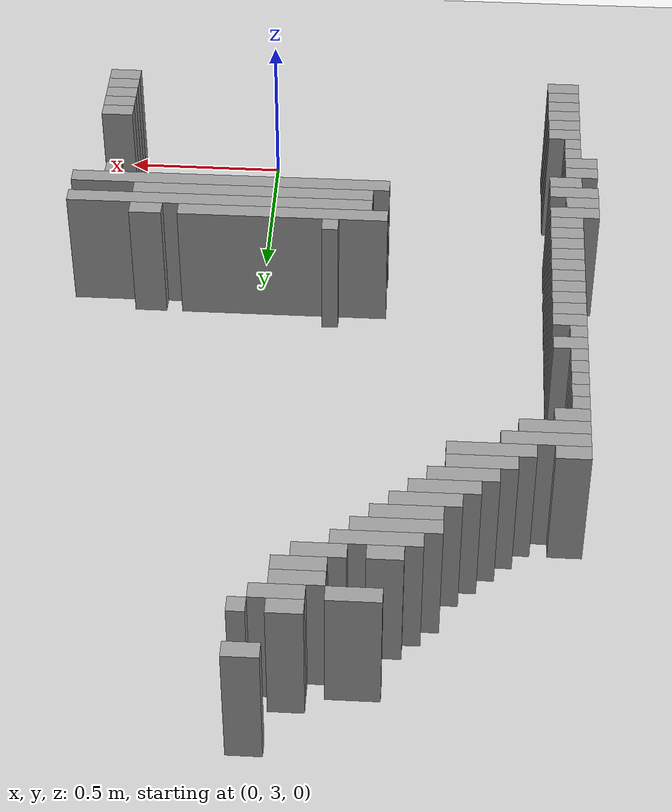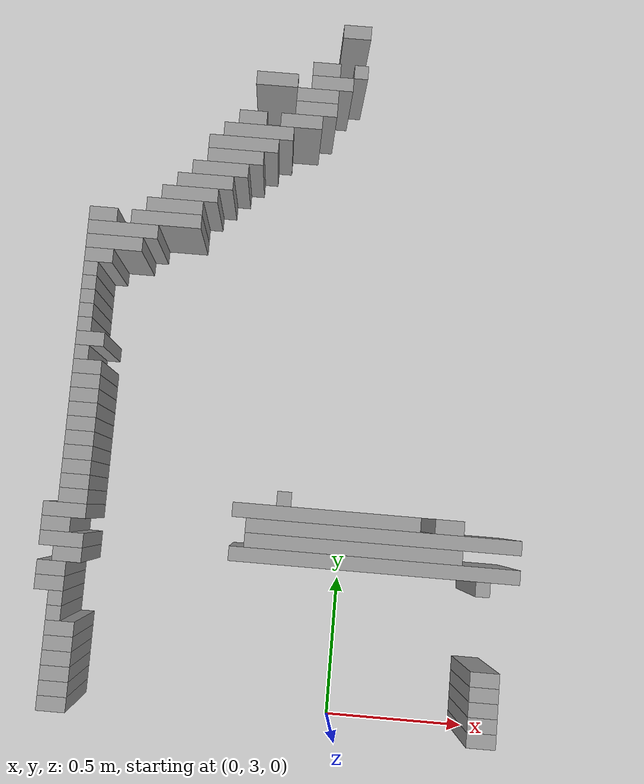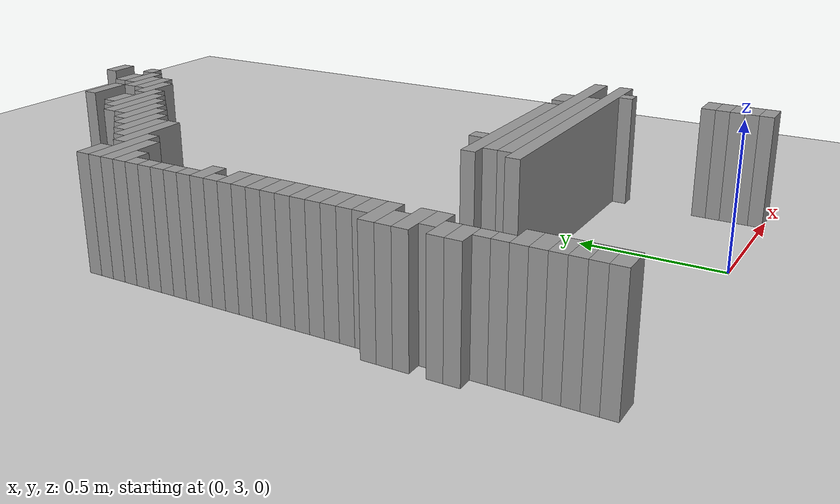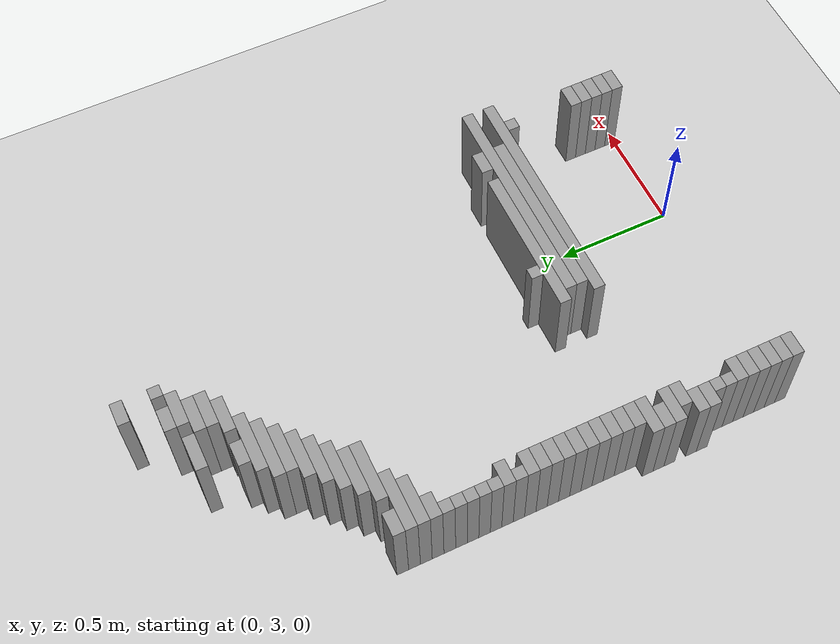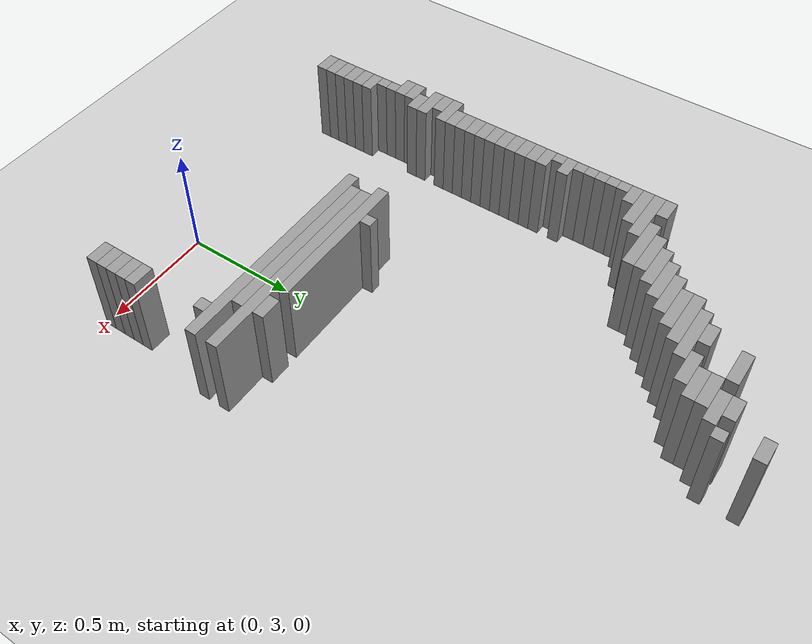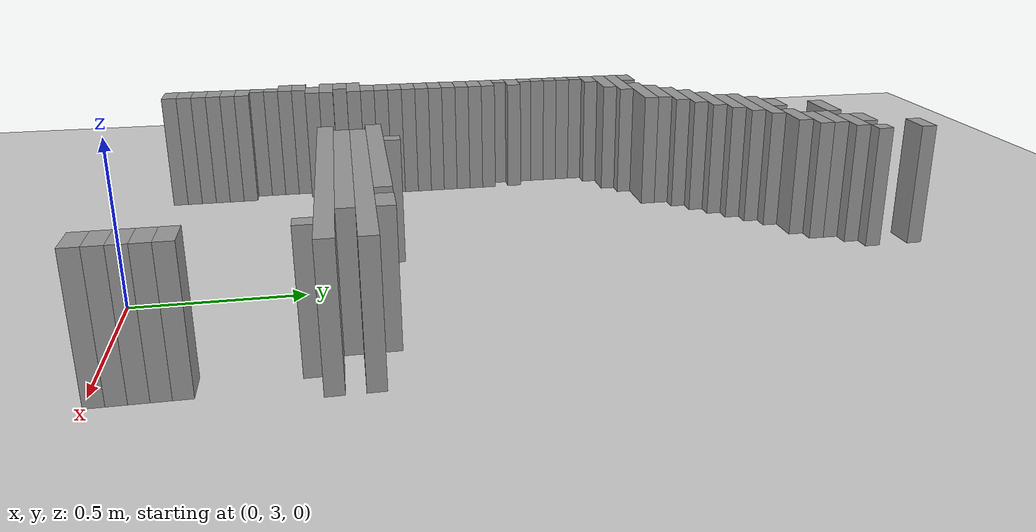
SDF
<sdf version="1.6">
 <world name="parking_mission">
  <include><uri>model://sun</uri></include>
  <include><uri>model://ground_plane</uri></include>
  <model name="wall_1">
   <static>true</static>
   <pose>-0.1000 5.4750 0.2000 0 0 0</pose>
   <link name="link">
    <collision name="collision">
     <geometry><box><size>0.1000 0.0500 0.4000</size></box></geometry>
     <surface>
      <contact><ode><kp>20000.0</kp><kd>10.0</kd><max_vel>0.5</max_vel><min_depth>0.001</min_depth></ode></contact>
      <friction><ode><mu>1.0</mu><mu2>1.0</mu2></ode></friction>
     </surface>
    </collision>
    <visual name="visual">
     <geometry><box><size>0.1000 0.0500 0.4000</size></box></geometry>
     <material>
      <script><name>Gazebo/Grey</name><uri>file://media/materials/scripts/gazebo.material</uri></script>
     </material>
    </visual>
   </link>
  </model>
  <model name="wall_14">
   <static>true</static>
   <pose>-0.2000 5.3250 0.2000 0 0 0</pose>
   <link name="link">
    <collision name="collision">
     <geometry><box><size>0.1000 0.0500 0.4000</size></box></geometry>
     <surface>
      <contact><ode><kp>20000.0</kp><kd>10.0</kd><max_vel>0.5</max_vel><min_depth>0.001</min_depth></ode></contact>
      <friction><ode><mu>1.0</mu><mu2>1.0</mu2></ode></friction>
     </surface>
    </collision>
    <visual name="visual">
     <geometry><box><size>0.1000 0.0500 0.4000</size></box></geometry>
     <material>
      <script><name>Gazebo/Grey</name><uri>file://media/materials/scripts/gazebo.material</uri></script>
     </material>
    </visual>
   </link>
  </model>
  <model name="wall_15">
   <static>true</static>
   <pose>-0.0750 5.3250 0.2000 0 0 0</pose>
   <link name="link">
    <collision name="collision">
     <geometry><box><size>0.0500 0.0500 0.4000</size></box></geometry>
     <surface>
      <contact><ode><kp>20000.0</kp><kd>10.0</kd><max_vel>0.5</max_vel><min_depth>0.001</min_depth></ode></contact>
      <friction><ode><mu>1.0</mu><mu2>1.0</mu2></ode></friction>
     </surface>
    </collision>
    <visual name="visual">
     <geometry><box><size>0.0500 0.0500 0.4000</size></box></geometry>
     <material>
      <script><name>Gazebo/Grey</name><uri>file://media/materials/scripts/gazebo.material</uri></script>
     </material>
    </visual>
   </link>
  </model>
  <model name="wall_17">
   <static>true</static>
   <pose>-0.3750 5.2750 0.2000 0 0 0</pose>
   <link name="link">
    <collision name="collision">
     <geometry><box><size>0.1500 0.0500 0.4000</size></box></geometry>
     <surface>
      <contact><ode><kp>20000.0</kp><kd>10.0</kd><max_vel>0.5</max_vel><min_depth>0.001</min_depth></ode></contact>
      <friction><ode><mu>1.0</mu><mu2>1.0</mu2></ode></friction>
     </surface>
    </collision>
    <visual name="visual">
     <geometry><box><size>0.1500 0.0500 0.4000</size></box></geometry>
     <material>
      <script><name>Gazebo/Grey</name><uri>file://media/materials/scripts/gazebo.material</uri></script>
     </material>
    </visual>
   </link>
  </model>
  <model name="wall_18">
   <static>true</static>
   <pose>-0.1750 5.2750 0.2000 0 0 0</pose>
   <link name="link">
    <collision name="collision">
     <geometry><box><size>0.1500 0.0500 0.4000</size></box></geometry>
     <surface>
      <contact><ode><kp>20000.0</kp><kd>10.0</kd><max_vel>0.5</max_vel><min_depth>0.001</min_depth></ode></contact>
      <friction><ode><mu>1.0</mu><mu2>1.0</mu2></ode></friction>
     </surface>
    </collision>
    <visual name="visual">
     <geometry><box><size>0.1500 0.0500 0.4000</size></box></geometry>
     <material>
      <script><name>Gazebo/Grey</name><uri>file://media/materials/scripts/gazebo.material</uri></script>
     </material>
    </visual>
   </link>
  </model>
  <model name="wall_21">
   <static>true</static>
   <pose>-0.2250 5.2250 0.2000 0 0 0</pose>
   <link name="link">
    <collision name="collision">
     <geometry><box><size>0.1500 0.0500 0.4000</size></box></geometry>
     <surface>
      <contact><ode><kp>20000.0</kp><kd>10.0</kd><max_vel>0.5</max_vel><min_depth>0.001</min_depth></ode></contact>
      <friction><ode><mu>1.0</mu><mu2>1.0</mu2></ode></friction>
     </surface>
    </collision>
    <visual name="visual">
     <geometry><box><size>0.1500 0.0500 0.4000</size></box></geometry>
     <material>
      <script><name>Gazebo/Grey</name><uri>file://media/materials/scripts/gazebo.material</uri></script>
     </material>
    </visual>
   </link>
  </model>
  <model name="wall_23">
   <static>true</static>
   <pose>-0.2250 5.1750 0.2000 0 0 0</pose>
   <link name="link">
    <collision name="collision">
     <geometry><box><size>0.1500 0.0500 0.4000</size></box></geometry>
     <surface>
      <contact><ode><kp>20000.0</kp><kd>10.0</kd><max_vel>0.5</max_vel><min_depth>0.001</min_depth></ode></contact>
      <friction><ode><mu>1.0</mu><mu2>1.0</mu2></ode></friction>
     </surface>
    </collision>
    <visual name="visual">
     <geometry><box><size>0.1500 0.0500 0.4000</size></box></geometry>
     <material>
      <script><name>Gazebo/Grey</name><uri>file://media/materials/scripts/gazebo.material</uri></script>
     </material>
    </visual>
   </link>
  </model>
  <model name="wall_27">
   <static>true</static>
   <pose>-0.4500 5.1250 0.2000 0 0 0</pose>
   <link name="link">
    <collision name="collision">
     <geometry><box><size>0.1000 0.0500 0.4000</size></box></geometry>
     <surface>
      <contact><ode><kp>20000.0</kp><kd>10.0</kd><max_vel>0.5</max_vel><min_depth>0.001</min_depth></ode></contact>
      <friction><ode><mu>1.0</mu><mu2>1.0</mu2></ode></friction>
     </surface>
    </collision>
    <visual name="visual">
     <geometry><box><size>0.1000 0.0500 0.4000</size></box></geometry>
     <material>
      <script><name>Gazebo/Grey</name><uri>file://media/materials/scripts/gazebo.material</uri></script>
     </material>
    </visual>
   </link>
  </model>
  <model name="wall_28">
   <static>true</static>
   <pose>-0.2750 5.1250 0.2000 0 0 0</pose>
   <link name="link">
    <collision name="collision">
     <geometry><box><size>0.1500 0.0500 0.4000</size></box></geometry>
     <surface>
      <contact><ode><kp>20000.0</kp><kd>10.0</kd><max_vel>0.5</max_vel><min_depth>0.001</min_depth></ode></contact>
      <friction><ode><mu>1.0</mu><mu2>1.0</mu2></ode></friction>
     </surface>
    </collision>
    <visual name="visual">
     <geometry><box><size>0.1500 0.0500 0.4000</size></box></geometry>
     <material>
      <script><name>Gazebo/Grey</name><uri>file://media/materials/scripts/gazebo.material</uri></script>
     </material>
    </visual>
   </link>
  </model>
  <model name="wall_32">
   <static>true</static>
   <pose>-0.4250 5.0750 0.2000 0 0 0</pose>
   <link name="link">
    <collision name="collision">
     <geometry><box><size>0.2500 0.0500 0.4000</size></box></geometry>
     <surface>
      <contact><ode><kp>20000.0</kp><kd>10.0</kd><max_vel>0.5</max_vel><min_depth>0.001</min_depth></ode></contact>
      <friction><ode><mu>1.0</mu><mu2>1.0</mu2></ode></friction>
     </surface>
    </collision>
    <visual name="visual">
     <geometry><box><size>0.2500 0.0500 0.4000</size></box></geometry>
     <material>
      <script><name>Gazebo/Grey</name><uri>file://media/materials/scripts/gazebo.material</uri></script>
     </material>
    </visual>
   </link>
  </model>
  <model name="wall_36">
   <static>true</static>
   <pose>-0.4750 5.0250 0.2000 0 0 0</pose>
   <link name="link">
    <collision name="collision">
     <geometry><box><size>0.2500 0.0500 0.4000</size></box></geometry>
     <surface>
      <contact><ode><kp>20000.0</kp><kd>10.0</kd><max_vel>0.5</max_vel><min_depth>0.001</min_depth></ode></contact>
      <friction><ode><mu>1.0</mu><mu2>1.0</mu2></ode></friction>
     </surface>
    </collision>
    <visual name="visual">
     <geometry><box><size>0.2500 0.0500 0.4000</size></box></geometry>
     <material>
      <script><name>Gazebo/Grey</name><uri>file://media/materials/scripts/gazebo.material</uri></script>
     </material>
    </visual>
   </link>
  </model>
  <model name="wall_39">
   <static>true</static>
   <pose>-0.5000 4.9750 0.2000 0 0 0</pose>
   <link name="link">
    <collision name="collision">
     <geometry><box><size>0.2000 0.0500 0.4000</size></box></geometry>
     <surface>
      <contact><ode><kp>20000.0</kp><kd>10.0</kd><max_vel>0.5</max_vel><min_depth>0.001</min_depth></ode></contact>
      <friction><ode><mu>1.0</mu><mu2>1.0</mu2></ode></friction>
     </surface>
    </collision>
    <visual name="visual">
     <geometry><box><size>0.2000 0.0500 0.4000</size></box></geometry>
     <material>
      <script><name>Gazebo/Grey</name><uri>file://media/materials/scripts/gazebo.material</uri></script>
     </material>
    </visual>
   </link>
  </model>
  <model name="wall_41">
   <static>true</static>
   <pose>-0.5500 4.9250 0.2000 0 0 0</pose>
   <link name="link">
    <collision name="collision">
     <geometry><box><size>0.2000 0.0500 0.4000</size></box></geometry>
     <surface>
      <contact><ode><kp>20000.0</kp><kd>10.0</kd><max_vel>0.5</max_vel><min_depth>0.001</min_depth></ode></contact>
      <friction><ode><mu>1.0</mu><mu2>1.0</mu2></ode></friction>
     </surface>
    </collision>
    <visual name="visual">
     <geometry><box><size>0.2000 0.0500 0.4000</size></box></geometry>
     <material>
      <script><name>Gazebo/Grey</name><uri>file://media/materials/scripts/gazebo.material</uri></script>
     </material>
    </visual>
   </link>
  </model>
  <model name="wall_43">
   <static>true</static>
   <pose>-0.6000 4.8750 0.2000 0 0 0</pose>
   <link name="link">
    <collision name="collision">
     <geometry><box><size>0.2000 0.0500 0.4000</size></box></geometry>
     <surface>
      <contact><ode><kp>20000.0</kp><kd>10.0</kd><max_vel>0.5</max_vel><min_depth>0.001</min_depth></ode></contact>
      <friction><ode><mu>1.0</mu><mu2>1.0</mu2></ode></friction>
     </surface>
    </collision>
    <visual name="visual">
     <geometry><box><size>0.2000 0.0500 0.4000</size></box></geometry>
     <material>
      <script><name>Gazebo/Grey</name><uri>file://media/materials/scripts/gazebo.material</uri></script>
     </material>
    </visual>
   </link>
  </model>
  <model name="wall_45">
   <static>true</static>
   <pose>-0.6500 4.8250 0.2000 0 0 0</pose>
   <link name="link">
    <collision name="collision">
     <geometry><box><size>0.2000 0.0500 0.4000</size></box></geometry>
     <surface>
      <contact><ode><kp>20000.0</kp><kd>10.0</kd><max_vel>0.5</max_vel><min_depth>0.001</min_depth></ode></contact>
      <friction><ode><mu>1.0</mu><mu2>1.0</mu2></ode></friction>
     </surface>
    </collision>
    <visual name="visual">
     <geometry><box><size>0.2000 0.0500 0.4000</size></box></geometry>
     <material>
      <script><name>Gazebo/Grey</name><uri>file://media/materials/scripts/gazebo.material</uri></script>
     </material>
    </visual>
   </link>
  </model>
  <model name="wall_47">
   <static>true</static>
   <pose>-0.7000 4.7750 0.2000 0 0 0</pose>
   <link name="link">
    <collision name="collision">
     <geometry><box><size>0.2000 0.0500 0.4000</size></box></geometry>
     <surface>
      <contact><ode><kp>20000.0</kp><kd>10.0</kd><max_vel>0.5</max_vel><min_depth>0.001</min_depth></ode></contact>
      <friction><ode><mu>1.0</mu><mu2>1.0</mu2></ode></friction>
     </surface>
    </collision>
    <visual name="visual">
     <geometry><box><size>0.2000 0.0500 0.4000</size></box></geometry>
     <material>
      <script><name>Gazebo/Grey</name><uri>file://media/materials/scripts/gazebo.material</uri></script>
     </material>
    </visual>
   </link>
  </model>
  <model name="wall_49">
   <static>true</static>
   <pose>-0.9500 4.7250 0.2000 0 0 0</pose>
   <link name="link">
    <collision name="collision">
     <geometry><box><size>0.1000 0.0500 0.4000</size></box></geometry>
     <surface>
      <contact><ode><kp>20000.0</kp><kd>10.0</kd><max_vel>0.5</max_vel><min_depth>0.001</min_depth></ode></contact>
      <friction><ode><mu>1.0</mu><mu2>1.0</mu2></ode></friction>
     </surface>
    </collision>
    <visual name="visual">
     <geometry><box><size>0.1000 0.0500 0.4000</size></box></geometry>
     <material>
      <script><name>Gazebo/Grey</name><uri>file://media/materials/scripts/gazebo.material</uri></script>
     </material>
    </visual>
   </link>
  </model>
  <model name="wall_50">
   <static>true</static>
   <pose>-0.7250 4.7250 0.2000 0 0 0</pose>
   <link name="link">
    <collision name="collision">
     <geometry><box><size>0.2500 0.0500 0.4000</size></box></geometry>
     <surface>
      <contact><ode><kp>20000.0</kp><kd>10.0</kd><max_vel>0.5</max_vel><min_depth>0.001</min_depth></ode></contact>
      <friction><ode><mu>1.0</mu><mu2>1.0</mu2></ode></friction>
     </surface>
    </collision>
    <visual name="visual">
     <geometry><box><size>0.2500 0.0500 0.4000</size></box></geometry>
     <material>
      <script><name>Gazebo/Grey</name><uri>file://media/materials/scripts/gazebo.material</uri></script>
     </material>
    </visual>
   </link>
  </model>
  <model name="wall_52">
   <static>true</static>
   <pose>-0.8750 4.6750 0.2000 0 0 0</pose>
   <link name="link">
    <collision name="collision">
     <geometry><box><size>0.2500 0.0500 0.4000</size></box></geometry>
     <surface>
      <contact><ode><kp>20000.0</kp><kd>10.0</kd><max_vel>0.5</max_vel><min_depth>0.001</min_depth></ode></contact>
      <friction><ode><mu>1.0</mu><mu2>1.0</mu2></ode></friction>
     </surface>
    </collision>
    <visual name="visual">
     <geometry><box><size>0.2500 0.0500 0.4000</size></box></geometry>
     <material>
      <script><name>Gazebo/Grey</name><uri>file://media/materials/scripts/gazebo.material</uri></script>
     </material>
    </visual>
   </link>
  </model>
  <model name="wall_54">
   <static>true</static>
   <pose>-0.9000 4.6250 0.2000 0 0 0</pose>
   <link name="link">
    <collision name="collision">
     <geometry><box><size>0.2000 0.0500 0.4000</size></box></geometry>
     <surface>
      <contact><ode><kp>20000.0</kp><kd>10.0</kd><max_vel>0.5</max_vel><min_depth>0.001</min_depth></ode></contact>
      <friction><ode><mu>1.0</mu><mu2>1.0</mu2></ode></friction>
     </surface>
    </collision>
    <visual name="visual">
     <geometry><box><size>0.2000 0.0500 0.4000</size></box></geometry>
     <material>
      <script><name>Gazebo/Grey</name><uri>file://media/materials/scripts/gazebo.material</uri></script>
     </material>
    </visual>
   </link>
  </model>
  <model name="wall_56">
   <static>true</static>
   <pose>-0.9500 4.5750 0.2000 0 0 0</pose>
   <link name="link">
    <collision name="collision">
     <geometry><box><size>0.1000 0.0500 0.4000</size></box></geometry>
     <surface>
      <contact><ode><kp>20000.0</kp><kd>10.0</kd><max_vel>0.5</max_vel><min_depth>0.001</min_depth></ode></contact>
      <friction><ode><mu>1.0</mu><mu2>1.0</mu2></ode></friction>
     </surface>
    </collision>
    <visual name="visual">
     <geometry><box><size>0.1000 0.0500 0.4000</size></box></geometry>
     <material>
      <script><name>Gazebo/Grey</name><uri>file://media/materials/scripts/gazebo.material</uri></script>
     </material>
    </visual>
   </link>
  </model>
  <model name="wall_58">
   <static>true</static>
   <pose>-0.9750 4.5250 0.2000 0 0 0</pose>
   <link name="link">
    <collision name="collision">
     <geometry><box><size>0.0500 0.0500 0.4000</size></box></geometry>
     <surface>
      <contact><ode><kp>20000.0</kp><kd>10.0</kd><max_vel>0.5</max_vel><min_depth>0.001</min_depth></ode></contact>
      <friction><ode><mu>1.0</mu><mu2>1.0</mu2></ode></friction>
     </surface>
    </collision>
    <visual name="visual">
     <geometry><box><size>0.0500 0.0500 0.4000</size></box></geometry>
     <material>
      <script><name>Gazebo/Grey</name><uri>file://media/materials/scripts/gazebo.material</uri></script>
     </material>
    </visual>
   </link>
  </model>
  <model name="wall_60">
   <static>true</static>
   <pose>-0.9750 4.4750 0.2000 0 0 0</pose>
   <link name="link">
    <collision name="collision">
     <geometry><box><size>0.0500 0.0500 0.4000</size></box></geometry>
     <surface>
      <contact><ode><kp>20000.0</kp><kd>10.0</kd><max_vel>0.5</max_vel><min_depth>0.001</min_depth></ode></contact>
      <friction><ode><mu>1.0</mu><mu2>1.0</mu2></ode></friction>
     </surface>
    </collision>
    <visual name="visual">
     <geometry><box><size>0.0500 0.0500 0.4000</size></box></geometry>
     <material>
      <script><name>Gazebo/Grey</name><uri>file://media/materials/scripts/gazebo.material</uri></script>
     </material>
    </visual>
   </link>
  </model>
  <model name="wall_62">
   <static>true</static>
   <pose>-0.9750 4.4250 0.2000 0 0 0</pose>
   <link name="link">
    <collision name="collision">
     <geometry><box><size>0.0500 0.0500 0.4000</size></box></geometry>
     <surface>
      <contact><ode><kp>20000.0</kp><kd>10.0</kd><max_vel>0.5</max_vel><min_depth>0.001</min_depth></ode></contact>
      <friction><ode><mu>1.0</mu><mu2>1.0</mu2></ode></friction>
     </surface>
    </collision>
    <visual name="visual">
     <geometry><box><size>0.0500 0.0500 0.4000</size></box></geometry>
     <material>
      <script><name>Gazebo/Grey</name><uri>file://media/materials/scripts/gazebo.material</uri></script>
     </material>
    </visual>
   </link>
  </model>
  <model name="wall_64">
   <static>true</static>
   <pose>-0.9750 4.3750 0.2000 0 0 0</pose>
   <link name="link">
    <collision name="collision">
     <geometry><box><size>0.0500 0.0500 0.4000</size></box></geometry>
     <surface>
      <contact><ode><kp>20000.0</kp><kd>10.0</kd><max_vel>0.5</max_vel><min_depth>0.001</min_depth></ode></contact>
      <friction><ode><mu>1.0</mu><mu2>1.0</mu2></ode></friction>
     </surface>
    </collision>
    <visual name="visual">
     <geometry><box><size>0.0500 0.0500 0.4000</size></box></geometry>
     <material>
      <script><name>Gazebo/Grey</name><uri>file://media/materials/scripts/gazebo.material</uri></script>
     </material>
    </visual>
   </link>
  </model>
  <model name="wall_66">
   <static>true</static>
   <pose>-0.9750 4.3250 0.2000 0 0 0</pose>
   <link name="link">
    <collision name="collision">
     <geometry><box><size>0.0500 0.0500 0.4000</size></box></geometry>
     <surface>
      <contact><ode><kp>20000.0</kp><kd>10.0</kd><max_vel>0.5</max_vel><min_depth>0.001</min_depth></ode></contact>
      <friction><ode><mu>1.0</mu><mu2>1.0</mu2></ode></friction>
     </surface>
    </collision>
    <visual name="visual">
     <geometry><box><size>0.0500 0.0500 0.4000</size></box></geometry>
     <material>
      <script><name>Gazebo/Grey</name><uri>file://media/materials/scripts/gazebo.material</uri></script>
     </material>
    </visual>
   </link>
  </model>
  <model name="wall_69">
   <static>true</static>
   <pose>-0.9500 4.2750 0.2000 0 0 0</pose>
   <link name="link">
    <collision name="collision">
     <geometry><box><size>0.1000 0.0500 0.4000</size></box></geometry>
     <surface>
      <contact><ode><kp>20000.0</kp><kd>10.0</kd><max_vel>0.5</max_vel><min_depth>0.001</min_depth></ode></contact>
      <friction><ode><mu>1.0</mu><mu2>1.0</mu2></ode></friction>
     </surface>
    </collision>
    <visual name="visual">
     <geometry><box><size>0.1000 0.0500 0.4000</size></box></geometry>
     <material>
      <script><name>Gazebo/Grey</name><uri>file://media/materials/scripts/gazebo.material</uri></script>
     </material>
    </visual>
   </link>
  </model>
  <model name="wall_74">
   <static>true</static>
   <pose>-0.9750 4.2250 0.2000 0 0 0</pose>
   <link name="link">
    <collision name="collision">
     <geometry><box><size>0.0500 0.0500 0.4000</size></box></geometry>
     <surface>
      <contact><ode><kp>20000.0</kp><kd>10.0</kd><max_vel>0.5</max_vel><min_depth>0.001</min_depth></ode></contact>
      <friction><ode><mu>1.0</mu><mu2>1.0</mu2></ode></friction>
     </surface>
    </collision>
    <visual name="visual">
     <geometry><box><size>0.0500 0.0500 0.4000</size></box></geometry>
     <material>
      <script><name>Gazebo/Grey</name><uri>file://media/materials/scripts/gazebo.material</uri></script>
     </material>
    </visual>
   </link>
  </model>
  <model name="wall_80">
   <static>true</static>
   <pose>-0.9500 4.1750 0.2000 0 0 0</pose>
   <link name="link">
    <collision name="collision">
     <geometry><box><size>0.1000 0.0500 0.4000</size></box></geometry>
     <surface>
      <contact><ode><kp>20000.0</kp><kd>10.0</kd><max_vel>0.5</max_vel><min_depth>0.001</min_depth></ode></contact>
      <friction><ode><mu>1.0</mu><mu2>1.0</mu2></ode></friction>
     </surface>
    </collision>
    <visual name="visual">
     <geometry><box><size>0.1000 0.0500 0.4000</size></box></geometry>
     <material>
      <script><name>Gazebo/Grey</name><uri>file://media/materials/scripts/gazebo.material</uri></script>
     </material>
    </visual>
   </link>
  </model>
  <model name="wall_85">
   <static>true</static>
   <pose>-0.9500 4.1250 0.2000 0 0 0</pose>
   <link name="link">
    <collision name="collision">
     <geometry><box><size>0.1000 0.0500 0.4000</size></box></geometry>
     <surface>
      <contact><ode><kp>20000.0</kp><kd>10.0</kd><max_vel>0.5</max_vel><min_depth>0.001</min_depth></ode></contact>
      <friction><ode><mu>1.0</mu><mu2>1.0</mu2></ode></friction>
     </surface>
    </collision>
    <visual name="visual">
     <geometry><box><size>0.1000 0.0500 0.4000</size></box></geometry>
     <material>
      <script><name>Gazebo/Grey</name><uri>file://media/materials/scripts/gazebo.material</uri></script>
     </material>
    </visual>
   </link>
  </model>
  <model name="wall_90">
   <static>true</static>
   <pose>-0.9500 4.0750 0.2000 0 0 0</pose>
   <link name="link">
    <collision name="collision">
     <geometry><box><size>0.1000 0.0500 0.4000</size></box></geometry>
     <surface>
      <contact><ode><kp>20000.0</kp><kd>10.0</kd><max_vel>0.5</max_vel><min_depth>0.001</min_depth></ode></contact>
      <friction><ode><mu>1.0</mu><mu2>1.0</mu2></ode></friction>
     </surface>
    </collision>
    <visual name="visual">
     <geometry><box><size>0.1000 0.0500 0.4000</size></box></geometry>
     <material>
      <script><name>Gazebo/Grey</name><uri>file://media/materials/scripts/gazebo.material</uri></script>
     </material>
    </visual>
   </link>
  </model>
  <model name="wall_93">
   <static>true</static>
   <pose>-0.9500 4.0250 0.2000 0 0 0</pose>
   <link name="link">
    <collision name="collision">
     <geometry><box><size>0.1000 0.0500 0.4000</size></box></geometry>
     <surface>
      <contact><ode><kp>20000.0</kp><kd>10.0</kd><max_vel>0.5</max_vel><min_depth>0.001</min_depth></ode></contact>
      <friction><ode><mu>1.0</mu><mu2>1.0</mu2></ode></friction>
     </surface>
    </collision>
    <visual name="visual">
     <geometry><box><size>0.1000 0.0500 0.4000</size></box></geometry>
     <material>
      <script><name>Gazebo/Grey</name><uri>file://media/materials/scripts/gazebo.material</uri></script>
     </material>
    </visual>
   </link>
  </model>
  <model name="wall_97">
   <static>true</static>
   <pose>-0.9500 3.9750 0.2000 0 0 0</pose>
   <link name="link">
    <collision name="collision">
     <geometry><box><size>0.1000 0.0500 0.4000</size></box></geometry>
     <surface>
      <contact><ode><kp>20000.0</kp><kd>10.0</kd><max_vel>0.5</max_vel><min_depth>0.001</min_depth></ode></contact>
      <friction><ode><mu>1.0</mu><mu2>1.0</mu2></ode></friction>
     </surface>
    </collision>
    <visual name="visual">
     <geometry><box><size>0.1000 0.0500 0.4000</size></box></geometry>
     <material>
      <script><name>Gazebo/Grey</name><uri>file://media/materials/scripts/gazebo.material</uri></script>
     </material>
    </visual>
   </link>
  </model>
  <model name="wall_100">
   <static>true</static>
   <pose>-0.9500 3.9250 0.2000 0 0 0</pose>
   <link name="link">
    <collision name="collision">
     <geometry><box><size>0.1000 0.0500 0.4000</size></box></geometry>
     <surface>
      <contact><ode><kp>20000.0</kp><kd>10.0</kd><max_vel>0.5</max_vel><min_depth>0.001</min_depth></ode></contact>
      <friction><ode><mu>1.0</mu><mu2>1.0</mu2></ode></friction>
     </surface>
    </collision>
    <visual name="visual">
     <geometry><box><size>0.1000 0.0500 0.4000</size></box></geometry>
     <material>
      <script><name>Gazebo/Grey</name><uri>file://media/materials/scripts/gazebo.material</uri></script>
     </material>
    </visual>
   </link>
  </model>
  <model name="wall_103">
   <static>true</static>
   <pose>-0.9500 3.8750 0.2000 0 0 0</pose>
   <link name="link">
    <collision name="collision">
     <geometry><box><size>0.1000 0.0500 0.4000</size></box></geometry>
     <surface>
      <contact><ode><kp>20000.0</kp><kd>10.0</kd><max_vel>0.5</max_vel><min_depth>0.001</min_depth></ode></contact>
      <friction><ode><mu>1.0</mu><mu2>1.0</mu2></ode></friction>
     </surface>
    </collision>
    <visual name="visual">
     <geometry><box><size>0.1000 0.0500 0.4000</size></box></geometry>
     <material>
      <script><name>Gazebo/Grey</name><uri>file://media/materials/scripts/gazebo.material</uri></script>
     </material>
    </visual>
   </link>
  </model>
  <model name="wall_106">
   <static>true</static>
   <pose>-0.9500 3.8250 0.2000 0 0 0</pose>
   <link name="link">
    <collision name="collision">
     <geometry><box><size>0.1000 0.0500 0.4000</size></box></geometry>
     <surface>
      <contact><ode><kp>20000.0</kp><kd>10.0</kd><max_vel>0.5</max_vel><min_depth>0.001</min_depth></ode></contact>
      <friction><ode><mu>1.0</mu><mu2>1.0</mu2></ode></friction>
     </surface>
    </collision>
    <visual name="visual">
     <geometry><box><size>0.1000 0.0500 0.4000</size></box></geometry>
     <material>
      <script><name>Gazebo/Grey</name><uri>file://media/materials/scripts/gazebo.material</uri></script>
     </material>
    </visual>
   </link>
  </model>
  <model name="wall_109">
   <static>true</static>
   <pose>-0.9500 3.7750 0.2000 0 0 0</pose>
   <link name="link">
    <collision name="collision">
     <geometry><box><size>0.1000 0.0500 0.4000</size></box></geometry>
     <surface>
      <contact><ode><kp>20000.0</kp><kd>10.0</kd><max_vel>0.5</max_vel><min_depth>0.001</min_depth></ode></contact>
      <friction><ode><mu>1.0</mu><mu2>1.0</mu2></ode></friction>
     </surface>
    </collision>
    <visual name="visual">
     <geometry><box><size>0.1000 0.0500 0.4000</size></box></geometry>
     <material>
      <script><name>Gazebo/Grey</name><uri>file://media/materials/scripts/gazebo.material</uri></script>
     </material>
    </visual>
   </link>
  </model>
  <model name="wall_110">
   <static>true</static>
   <pose>-0.2250 3.7750 0.2000 0 0 0</pose>
   <link name="link">
    <collision name="collision">
     <geometry><box><size>0.0500 0.0500 0.4000</size></box></geometry>
     <surface>
      <contact><ode><kp>20000.0</kp><kd>10.0</kd><max_vel>0.5</max_vel><min_depth>0.001</min_depth></ode></contact>
      <friction><ode><mu>1.0</mu><mu2>1.0</mu2></ode></friction>
     </surface>
    </collision>
    <visual name="visual">
     <geometry><box><size>0.0500 0.0500 0.4000</size></box></geometry>
     <material>
      <script><name>Gazebo/Grey</name><uri>file://media/materials/scripts/gazebo.material</uri></script>
     </material>
    </visual>
   </link>
  </model>
  <model name="wall_113">
   <static>true</static>
   <pose>-0.9500 3.7250 0.2000 0 0 0</pose>
   <link name="link">
    <collision name="collision">
     <geometry><box><size>0.1000 0.0500 0.4000</size></box></geometry>
     <surface>
      <contact><ode><kp>20000.0</kp><kd>10.0</kd><max_vel>0.5</max_vel><min_depth>0.001</min_depth></ode></contact>
      <friction><ode><mu>1.0</mu><mu2>1.0</mu2></ode></friction>
     </surface>
    </collision>
    <visual name="visual">
     <geometry><box><size>0.1000 0.0500 0.4000</size></box></geometry>
     <material>
      <script><name>Gazebo/Grey</name><uri>file://media/materials/scripts/gazebo.material</uri></script>
     </material>
    </visual>
   </link>
  </model>
  <model name="wall_114">
   <static>true</static>
   <pose>-0.0750 3.7250 0.2000 0 0 0</pose>
   <link name="link">
    <collision name="collision">
     <geometry><box><size>0.6500 0.0500 0.4000</size></box></geometry>
     <surface>
      <contact><ode><kp>20000.0</kp><kd>10.0</kd><max_vel>0.5</max_vel><min_depth>0.001</min_depth></ode></contact>
      <friction><ode><mu>1.0</mu><mu2>1.0</mu2></ode></friction>
     </surface>
    </collision>
    <visual name="visual">
     <geometry><box><size>0.6500 0.0500 0.4000</size></box></geometry>
     <material>
      <script><name>Gazebo/Grey</name><uri>file://media/materials/scripts/gazebo.material</uri></script>
     </material>
    </visual>
   </link>
  </model>
  <model name="wall_115">
   <static>true</static>
   <pose>0.3500 3.7250 0.2000 0 0 0</pose>
   <link name="link">
    <collision name="collision">
     <geometry><box><size>0.1000 0.0500 0.4000</size></box></geometry>
     <surface>
      <contact><ode><kp>20000.0</kp><kd>10.0</kd><max_vel>0.5</max_vel><min_depth>0.001</min_depth></ode></contact>
      <friction><ode><mu>1.0</mu><mu2>1.0</mu2></ode></friction>
     </surface>
    </collision>
    <visual name="visual">
     <geometry><box><size>0.1000 0.0500 0.4000</size></box></geometry>
     <material>
      <script><name>Gazebo/Grey</name><uri>file://media/materials/scripts/gazebo.material</uri></script>
     </material>
    </visual>
   </link>
  </model>
  <model name="wall_119">
   <static>true</static>
   <pose>-0.9750 3.6750 0.2000 0 0 0</pose>
   <link name="link">
    <collision name="collision">
     <geometry><box><size>0.1500 0.0500 0.4000</size></box></geometry>
     <surface>
      <contact><ode><kp>20000.0</kp><kd>10.0</kd><max_vel>0.5</max_vel><min_depth>0.001</min_depth></ode></contact>
      <friction><ode><mu>1.0</mu><mu2>1.0</mu2></ode></friction>
     </surface>
    </collision>
    <visual name="visual">
     <geometry><box><size>0.1500 0.0500 0.4000</size></box></geometry>
     <material>
      <script><name>Gazebo/Grey</name><uri>file://media/materials/scripts/gazebo.material</uri></script>
     </material>
    </visual>
   </link>
  </model>
  <model name="wall_120">
   <static>true</static>
   <pose>0.1250 3.6750 0.2000 0 0 0</pose>
   <link name="link">
    <collision name="collision">
     <geometry><box><size>0.9500 0.0500 0.4000</size></box></geometry>
     <surface>
      <contact><ode><kp>20000.0</kp><kd>10.0</kd><max_vel>0.5</max_vel><min_depth>0.001</min_depth></ode></contact>
      <friction><ode><mu>1.0</mu><mu2>1.0</mu2></ode></friction>
     </surface>
    </collision>
    <visual name="visual">
     <geometry><box><size>0.9500 0.0500 0.4000</size></box></geometry>
     <material>
      <script><name>Gazebo/Grey</name><uri>file://media/materials/scripts/gazebo.material</uri></script>
     </material>
    </visual>
   </link>
  </model>
  <model name="wall_125">
   <static>true</static>
   <pose>-1.0000 3.6250 0.2000 0 0 0</pose>
   <link name="link">
    <collision name="collision">
     <geometry><box><size>0.1000 0.0500 0.4000</size></box></geometry>
     <surface>
      <contact><ode><kp>20000.0</kp><kd>10.0</kd><max_vel>0.5</max_vel><min_depth>0.001</min_depth></ode></contact>
      <friction><ode><mu>1.0</mu><mu2>1.0</mu2></ode></friction>
     </surface>
    </collision>
    <visual name="visual">
     <geometry><box><size>0.1000 0.0500 0.4000</size></box></geometry>
     <material>
      <script><name>Gazebo/Grey</name><uri>file://media/materials/scripts/gazebo.material</uri></script>
     </material>
    </visual>
   </link>
  </model>
  <model name="wall_126">
   <static>true</static>
   <pose>0.0250 3.6250 0.2000 0 0 0</pose>
   <link name="link">
    <collision name="collision">
     <geometry><box><size>0.7500 0.0500 0.4000</size></box></geometry>
     <surface>
      <contact><ode><kp>20000.0</kp><kd>10.0</kd><max_vel>0.5</max_vel><min_depth>0.001</min_depth></ode></contact>
      <friction><ode><mu>1.0</mu><mu2>1.0</mu2></ode></friction>
     </surface>
    </collision>
    <visual name="visual">
     <geometry><box><size>0.7500 0.0500 0.4000</size></box></geometry>
     <material>
      <script><name>Gazebo/Grey</name><uri>file://media/materials/scripts/gazebo.material</uri></script>
     </material>
    </visual>
   </link>
  </model>
  <model name="wall_134">
   <static>true</static>
   <pose>-0.9750 3.5750 0.2000 0 0 0</pose>
   <link name="link">
    <collision name="collision">
     <geometry><box><size>0.1500 0.0500 0.4000</size></box></geometry>
     <surface>
      <contact><ode><kp>20000.0</kp><kd>10.0</kd><max_vel>0.5</max_vel><min_depth>0.001</min_depth></ode></contact>
      <friction><ode><mu>1.0</mu><mu2>1.0</mu2></ode></friction>
     </surface>
    </collision>
    <visual name="visual">
     <geometry><box><size>0.1500 0.0500 0.4000</size></box></geometry>
     <material>
      <script><name>Gazebo/Grey</name><uri>file://media/materials/scripts/gazebo.material</uri></script>
     </material>
    </visual>
   </link>
  </model>
  <model name="wall_135">
   <static>true</static>
   <pose>0.1000 3.5750 0.2000 0 0 0</pose>
   <link name="link">
    <collision name="collision">
     <geometry><box><size>1.0000 0.0500 0.4000</size></box></geometry>
     <surface>
      <contact><ode><kp>20000.0</kp><kd>10.0</kd><max_vel>0.5</max_vel><min_depth>0.001</min_depth></ode></contact>
      <friction><ode><mu>1.0</mu><mu2>1.0</mu2></ode></friction>
     </surface>
    </collision>
    <visual name="visual">
     <geometry><box><size>1.0000 0.0500 0.4000</size></box></geometry>
     <material>
      <script><name>Gazebo/Grey</name><uri>file://media/materials/scripts/gazebo.material</uri></script>
     </material>
    </visual>
   </link>
  </model>
  <model name="wall_140">
   <static>true</static>
   <pose>-0.9500 3.5250 0.2000 0 0 0</pose>
   <link name="link">
    <collision name="collision">
     <geometry><box><size>0.1000 0.0500 0.4000</size></box></geometry>
     <surface>
      <contact><ode><kp>20000.0</kp><kd>10.0</kd><max_vel>0.5</max_vel><min_depth>0.001</min_depth></ode></contact>
      <friction><ode><mu>1.0</mu><mu2>1.0</mu2></ode></friction>
     </surface>
    </collision>
    <visual name="visual">
     <geometry><box><size>0.1000 0.0500 0.4000</size></box></geometry>
     <material>
      <script><name>Gazebo/Grey</name><uri>file://media/materials/scripts/gazebo.material</uri></script>
     </material>
    </visual>
   </link>
  </model>
  <model name="wall_141">
   <static>true</static>
   <pose>0.4750 3.5250 0.2000 0 0 0</pose>
   <link name="link">
    <collision name="collision">
     <geometry><box><size>0.0500 0.0500 0.4000</size></box></geometry>
     <surface>
      <contact><ode><kp>20000.0</kp><kd>10.0</kd><max_vel>0.5</max_vel><min_depth>0.001</min_depth></ode></contact>
      <friction><ode><mu>1.0</mu><mu2>1.0</mu2></ode></friction>
     </surface>
    </collision>
    <visual name="visual">
     <geometry><box><size>0.0500 0.0500 0.4000</size></box></geometry>
     <material>
      <script><name>Gazebo/Grey</name><uri>file://media/materials/scripts/gazebo.material</uri></script>
     </material>
    </visual>
   </link>
  </model>
  <model name="wall_146">
   <static>true</static>
   <pose>-1.0000 3.4750 0.2000 0 0 0</pose>
   <link name="link">
    <collision name="collision">
     <geometry><box><size>0.1000 0.0500 0.4000</size></box></geometry>
     <surface>
      <contact><ode><kp>20000.0</kp><kd>10.0</kd><max_vel>0.5</max_vel><min_depth>0.001</min_depth></ode></contact>
      <friction><ode><mu>1.0</mu><mu2>1.0</mu2></ode></friction>
     </surface>
    </collision>
    <visual name="visual">
     <geometry><box><size>0.1000 0.0500 0.4000</size></box></geometry>
     <material>
      <script><name>Gazebo/Grey</name><uri>file://media/materials/scripts/gazebo.material</uri></script>
     </material>
    </visual>
   </link>
  </model>
  <model name="wall_151">
   <static>true</static>
   <pose>-1.0000 3.4250 0.2000 0 0 0</pose>
   <link name="link">
    <collision name="collision">
     <geometry><box><size>0.1000 0.0500 0.4000</size></box></geometry>
     <surface>
      <contact><ode><kp>20000.0</kp><kd>10.0</kd><max_vel>0.5</max_vel><min_depth>0.001</min_depth></ode></contact>
      <friction><ode><mu>1.0</mu><mu2>1.0</mu2></ode></friction>
     </surface>
    </collision>
    <visual name="visual">
     <geometry><box><size>0.1000 0.0500 0.4000</size></box></geometry>
     <material>
      <script><name>Gazebo/Grey</name><uri>file://media/materials/scripts/gazebo.material</uri></script>
     </material>
    </visual>
   </link>
  </model>
  <model name="wall_156">
   <static>true</static>
   <pose>-0.9750 3.3750 0.2000 0 0 0</pose>
   <link name="link">
    <collision name="collision">
     <geometry><box><size>0.0500 0.0500 0.4000</size></box></geometry>
     <surface>
      <contact><ode><kp>20000.0</kp><kd>10.0</kd><max_vel>0.5</max_vel><min_depth>0.001</min_depth></ode></contact>
      <friction><ode><mu>1.0</mu><mu2>1.0</mu2></ode></friction>
     </surface>
    </collision>
    <visual name="visual">
     <geometry><box><size>0.0500 0.0500 0.4000</size></box></geometry>
     <material>
      <script><name>Gazebo/Grey</name><uri>file://media/materials/scripts/gazebo.material</uri></script>
     </material>
    </visual>
   </link>
  </model>
  <model name="wall_161">
   <static>true</static>
   <pose>-0.9750 3.3250 0.2000 0 0 0</pose>
   <link name="link">
    <collision name="collision">
     <geometry><box><size>0.0500 0.0500 0.4000</size></box></geometry>
     <surface>
      <contact><ode><kp>20000.0</kp><kd>10.0</kd><max_vel>0.5</max_vel><min_depth>0.001</min_depth></ode></contact>
      <friction><ode><mu>1.0</mu><mu2>1.0</mu2></ode></friction>
     </surface>
    </collision>
    <visual name="visual">
     <geometry><box><size>0.0500 0.0500 0.4000</size></box></geometry>
     <material>
      <script><name>Gazebo/Grey</name><uri>file://media/materials/scripts/gazebo.material</uri></script>
     </material>
    </visual>
   </link>
  </model>
  <model name="wall_166">
   <static>true</static>
   <pose>-0.9500 3.2750 0.2000 0 0 0</pose>
   <link name="link">
    <collision name="collision">
     <geometry><box><size>0.1000 0.0500 0.4000</size></box></geometry>
     <surface>
      <contact><ode><kp>20000.0</kp><kd>10.0</kd><max_vel>0.5</max_vel><min_depth>0.001</min_depth></ode></contact>
      <friction><ode><mu>1.0</mu><mu2>1.0</mu2></ode></friction>
     </surface>
    </collision>
    <visual name="visual">
     <geometry><box><size>0.1000 0.0500 0.4000</size></box></geometry>
     <material>
      <script><name>Gazebo/Grey</name><uri>file://media/materials/scripts/gazebo.material</uri></script>
     </material>
    </visual>
   </link>
  </model>
  <model name="wall_171">
   <static>true</static>
   <pose>-0.9500 3.2250 0.2000 0 0 0</pose>
   <link name="link">
    <collision name="collision">
     <geometry><box><size>0.1000 0.0500 0.4000</size></box></geometry>
     <surface>
      <contact><ode><kp>20000.0</kp><kd>10.0</kd><max_vel>0.5</max_vel><min_depth>0.001</min_depth></ode></contact>
      <friction><ode><mu>1.0</mu><mu2>1.0</mu2></ode></friction>
     </surface>
    </collision>
    <visual name="visual">
     <geometry><box><size>0.1000 0.0500 0.4000</size></box></geometry>
     <material>
      <script><name>Gazebo/Grey</name><uri>file://media/materials/scripts/gazebo.material</uri></script>
     </material>
    </visual>
   </link>
  </model>
  <model name="wall_172">
   <static>true</static>
   <pose>0.5000 3.2250 0.2000 0 0 0</pose>
   <link name="link">
    <collision name="collision">
     <geometry><box><size>0.1000 0.0500 0.4000</size></box></geometry>
     <surface>
      <contact><ode><kp>20000.0</kp><kd>10.0</kd><max_vel>0.5</max_vel><min_depth>0.001</min_depth></ode></contact>
      <friction><ode><mu>1.0</mu><mu2>1.0</mu2></ode></friction>
     </surface>
    </collision>
    <visual name="visual">
     <geometry><box><size>0.1000 0.0500 0.4000</size></box></geometry>
     <material>
      <script><name>Gazebo/Grey</name><uri>file://media/materials/scripts/gazebo.material</uri></script>
     </material>
    </visual>
   </link>
  </model>
  <model name="wall_175">
   <static>true</static>
   <pose>-0.9500 3.1750 0.2000 0 0 0</pose>
   <link name="link">
    <collision name="collision">
     <geometry><box><size>0.1000 0.0500 0.4000</size></box></geometry>
     <surface>
      <contact><ode><kp>20000.0</kp><kd>10.0</kd><max_vel>0.5</max_vel><min_depth>0.001</min_depth></ode></contact>
      <friction><ode><mu>1.0</mu><mu2>1.0</mu2></ode></friction>
     </surface>
    </collision>
    <visual name="visual">
     <geometry><box><size>0.1000 0.0500 0.4000</size></box></geometry>
     <material>
      <script><name>Gazebo/Grey</name><uri>file://media/materials/scripts/gazebo.material</uri></script>
     </material>
    </visual>
   </link>
  </model>
  <model name="wall_176">
   <static>true</static>
   <pose>0.5000 3.1750 0.2000 0 0 0</pose>
   <link name="link">
    <collision name="collision">
     <geometry><box><size>0.1000 0.0500 0.4000</size></box></geometry>
     <surface>
      <contact><ode><kp>20000.0</kp><kd>10.0</kd><max_vel>0.5</max_vel><min_depth>0.001</min_depth></ode></contact>
      <friction><ode><mu>1.0</mu><mu2>1.0</mu2></ode></friction>
     </surface>
    </collision>
    <visual name="visual">
     <geometry><box><size>0.1000 0.0500 0.4000</size></box></geometry>
     <material>
      <script><name>Gazebo/Grey</name><uri>file://media/materials/scripts/gazebo.material</uri></script>
     </material>
    </visual>
   </link>
  </model>
  <model name="wall_179">
   <static>true</static>
   <pose>-0.9500 3.1250 0.2000 0 0 0</pose>
   <link name="link">
    <collision name="collision">
     <geometry><box><size>0.1000 0.0500 0.4000</size></box></geometry>
     <surface>
      <contact><ode><kp>20000.0</kp><kd>10.0</kd><max_vel>0.5</max_vel><min_depth>0.001</min_depth></ode></contact>
      <friction><ode><mu>1.0</mu><mu2>1.0</mu2></ode></friction>
     </surface>
    </collision>
    <visual name="visual">
     <geometry><box><size>0.1000 0.0500 0.4000</size></box></geometry>
     <material>
      <script><name>Gazebo/Grey</name><uri>file://media/materials/scripts/gazebo.material</uri></script>
     </material>
    </visual>
   </link>
  </model>
  <model name="wall_180">
   <static>true</static>
   <pose>0.5000 3.1250 0.2000 0 0 0</pose>
   <link name="link">
    <collision name="collision">
     <geometry><box><size>0.1000 0.0500 0.4000</size></box></geometry>
     <surface>
      <contact><ode><kp>20000.0</kp><kd>10.0</kd><max_vel>0.5</max_vel><min_depth>0.001</min_depth></ode></contact>
      <friction><ode><mu>1.0</mu><mu2>1.0</mu2></ode></friction>
     </surface>
    </collision>
    <visual name="visual">
     <geometry><box><size>0.1000 0.0500 0.4000</size></box></geometry>
     <material>
      <script><name>Gazebo/Grey</name><uri>file://media/materials/scripts/gazebo.material</uri></script>
     </material>
    </visual>
   </link>
  </model>
  <model name="wall_183">
   <static>true</static>
   <pose>-0.9500 3.0750 0.2000 0 0 0</pose>
   <link name="link">
    <collision name="collision">
     <geometry><box><size>0.1000 0.0500 0.4000</size></box></geometry>
     <surface>
      <contact><ode><kp>20000.0</kp><kd>10.0</kd><max_vel>0.5</max_vel><min_depth>0.001</min_depth></ode></contact>
      <friction><ode><mu>1.0</mu><mu2>1.0</mu2></ode></friction>
     </surface>
    </collision>
    <visual name="visual">
     <geometry><box><size>0.1000 0.0500 0.4000</size></box></geometry>
     <material>
      <script><name>Gazebo/Grey</name><uri>file://media/materials/scripts/gazebo.material</uri></script>
     </material>
    </visual>
   </link>
  </model>
  <model name="wall_184">
   <static>true</static>
   <pose>0.5000 3.0750 0.2000 0 0 0</pose>
   <link name="link">
    <collision name="collision">
     <geometry><box><size>0.1000 0.0500 0.4000</size></box></geometry>
     <surface>
      <contact><ode><kp>20000.0</kp><kd>10.0</kd><max_vel>0.5</max_vel><min_depth>0.001</min_depth></ode></contact>
      <friction><ode><mu>1.0</mu><mu2>1.0</mu2></ode></friction>
     </surface>
    </collision>
    <visual name="visual">
     <geometry><box><size>0.1000 0.0500 0.4000</size></box></geometry>
     <material>
      <script><name>Gazebo/Grey</name><uri>file://media/materials/scripts/gazebo.material</uri></script>
     </material>
    </visual>
   </link>
  </model>
  <model name="wall_187">
   <static>true</static>
   <pose>-0.9500 3.0250 0.2000 0 0 0</pose>
   <link name="link">
    <collision name="collision">
     <geometry><box><size>0.1000 0.0500 0.4000</size></box></geometry>
     <surface>
      <contact><ode><kp>20000.0</kp><kd>10.0</kd><max_vel>0.5</max_vel><min_depth>0.001</min_depth></ode></contact>
      <friction><ode><mu>1.0</mu><mu2>1.0</mu2></ode></friction>
     </surface>
    </collision>
    <visual name="visual">
     <geometry><box><size>0.1000 0.0500 0.4000</size></box></geometry>
     <material>
      <script><name>Gazebo/Grey</name><uri>file://media/materials/scripts/gazebo.material</uri></script>
     </material>
    </visual>
   </link>
  </model>
  <model name="wall_188">
   <static>true</static>
   <pose>0.5000 3.0250 0.2000 0 0 0</pose>
   <link name="link">
    <collision name="collision">
     <geometry><box><size>0.1000 0.0500 0.4000</size></box></geometry>
     <surface>
      <contact><ode><kp>20000.0</kp><kd>10.0</kd><max_vel>0.5</max_vel><min_depth>0.001</min_depth></ode></contact>
      <friction><ode><mu>1.0</mu><mu2>1.0</mu2></ode></friction>
     </surface>
    </collision>
    <visual name="visual">
     <geometry><box><size>0.1000 0.0500 0.4000</size></box></geometry>
     <material>
      <script><name>Gazebo/Grey</name><uri>file://media/materials/scripts/gazebo.material</uri></script>
     </material>
    </visual>
   </link>
  </model>
 </world>
</sdf>
